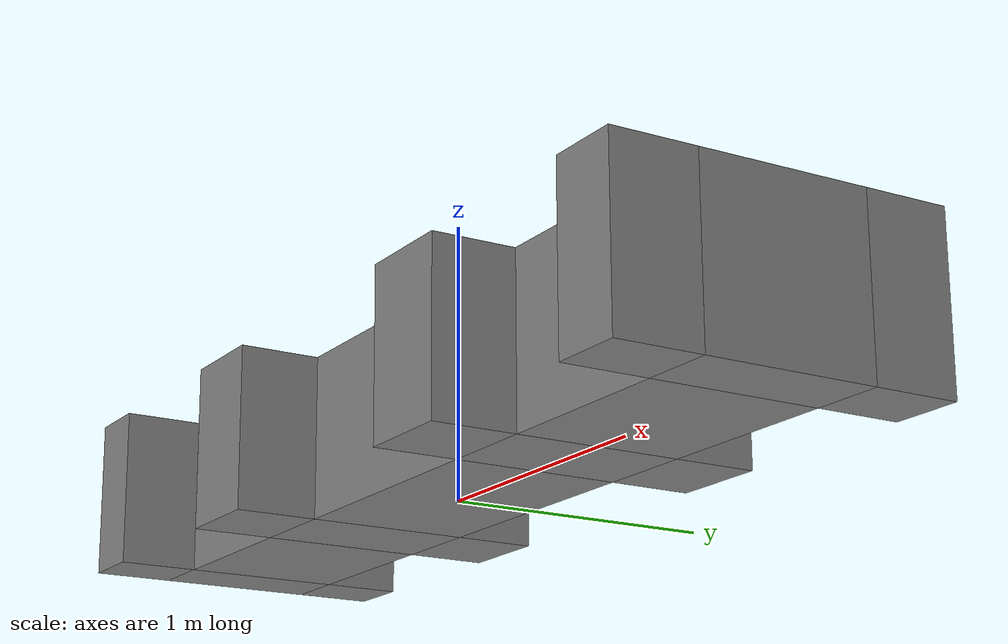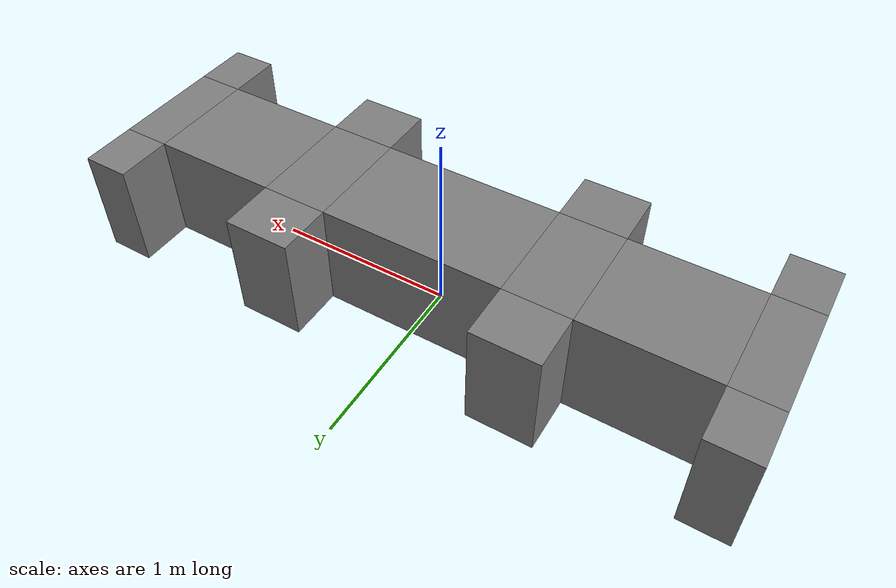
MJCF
<?xml version="1.0" ?>
<mujoco model="3_slot_block_large_center">
    <asset/>
    <worldbody>
        <body>
            <body name="object">
                <geom pos="-1.6724999999999999 -0.44999999999999996 0.3" size="0.1275 0.15 0.3" type="box" group="0" solimp="0.998 0.998 0.001" solref="0.02 1" friction="0.95 0.3 0.1" condim="4" density="100"/>
                <geom pos="-1.6724999999999999 0.0 0.3" size="0.1275 0.3 0.3" type="box" group="0" solimp="0.998 0.998 0.001" solref="0.02 1" friction="0.95 0.3 0.1" condim="4" density="100"/>
                <geom pos="-1.6724999999999999 0.44999999999999996 0.3" size="0.1275 0.15 0.3" type="box" group="0" solimp="0.998 0.998 0.001" solref="0.02 1" friction="0.95 0.3 0.1" condim="4" density="100"/>
                <geom pos="-1.2 0.0 0.3" size="0.345 0.3 0.3" type="box" group="0" solimp="0.998 0.998 0.001" solref="0.02 1" friction="0.95 0.3 0.1" condim="4" density="100"/>
                <geom pos="-0.6749999999999999 -0.44999999999999996 0.3" size="0.18 0.15 0.3" type="box" group="0" solimp="0.998 0.998 0.001" solref="0.02 1" friction="0.95 0.3 0.1" condim="4" density="100"/>
                <geom pos="-0.6749999999999999 0.0 0.3" size="0.18 0.3 0.3" type="box" group="0" solimp="0.998 0.998 0.001" solref="0.02 1" friction="0.95 0.3 0.1" condim="4" density="100"/>
                <geom pos="-0.6749999999999999 0.44999999999999996 0.3" size="0.18 0.15 0.3" type="box" group="0" solimp="0.998 0.998 0.001" solref="0.02 1" friction="0.95 0.3 0.1" condim="4" density="100"/>
                <geom pos="0.0 0.0 0.3" size="0.495 0.3 0.3" type="box" group="0" solimp="0.998 0.998 0.001" solref="0.02 1" friction="0.95 0.3 0.1" condim="4" density="100"/>
                <geom pos="0.6749999999999999 -0.44999999999999996 0.3" size="0.18 0.15 0.3" type="box" group="0" solimp="0.998 0.998 0.001" solref="0.02 1" friction="0.95 0.3 0.1" condim="4" density="100"/>
                <geom pos="0.6749999999999999 0.0 0.3" size="0.18 0.3 0.3" type="box" group="0" solimp="0.998 0.998 0.001" solref="0.02 1" friction="0.95 0.3 0.1" condim="4" density="100"/>
                <geom pos="0.6749999999999999 0.44999999999999996 0.3" size="0.18 0.15 0.3" type="box" group="0" solimp="0.998 0.998 0.001" solref="0.02 1" friction="0.95 0.3 0.1" condim="4" density="100"/>
                <geom pos="1.2 0.0 0.3" size="0.345 0.3 0.3" type="box" group="0" solimp="0.998 0.998 0.001" solref="0.02 1" friction="0.95 0.3 0.1" condim="4" density="100"/>
                <geom pos="1.6724999999999999 -0.44999999999999996 0.3" size="0.1275 0.15 0.3" type="box" group="0" solimp="0.998 0.998 0.001" solref="0.02 1" friction="0.95 0.3 0.1" condim="4" density="100"/>
                <geom pos="1.6724999999999999 0.0 0.3" size="0.1275 0.3 0.3" type="box" group="0" solimp="0.998 0.998 0.001" solref="0.02 1" friction="0.95 0.3 0.1" condim="4" density="100"/>
                <geom pos="1.6724999999999999 0.44999999999999996 0.3" size="0.1275 0.15 0.3" type="box" group="0" solimp="0.998 0.998 0.001" solref="0.02 1" friction="0.95 0.3 0.1" condim="4" density="100"/>
            </body>
            <site rgba="0 0 0 0" size="0" pos="0 0 0" name="bottom_site"/>
            <site rgba="0 0 0 0" size="0" pos="0 0 0" name="top_site"/>
            <site rgba="0 0 0 0" size="0" pos="0 0 0" name="horizontal_radius_site"/>
        </body>
    </worldbody>
</mujoco>
